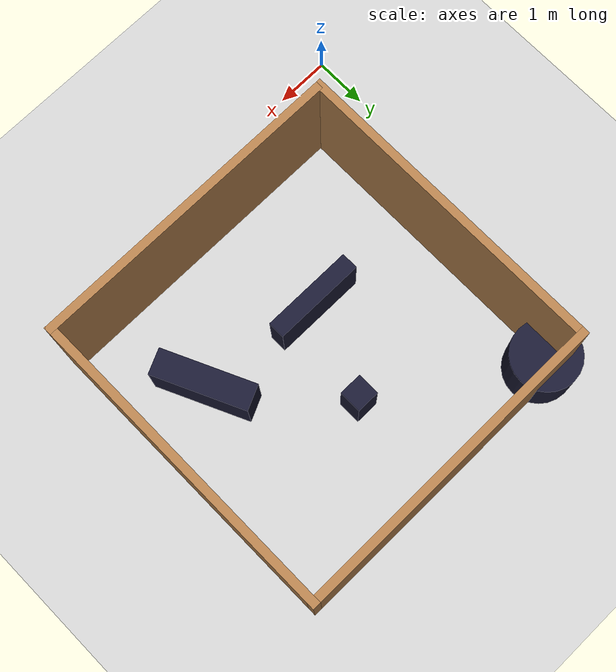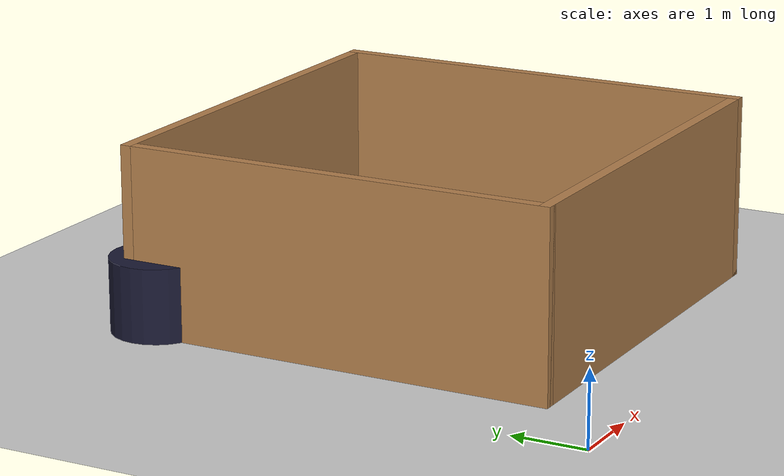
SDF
<sdf version="1.6">
 <world name="default">
  <light name="sun" type="directional">
   <pose>0 0 10 0 -0 0</pose>
   <diffuse>0.8 0.8 0.8 1</diffuse>
   <specular>0.1 0.1 0.1 1</specular>
   <attenuation>
    <range>1000</range>
    <constant>0.9</constant>
    <linear>0.01</linear>
    <quadratic>0.001</quadratic>
   </attenuation>
   <direction>-0.5 0.5 -1</direction>
  </light>
  <model name="ground_plane">
   <static>1</static>
   <link name="link">
    <collision name="collision">
     <geometry><plane><normal>0 0 1</normal><size>100 100</size></plane></geometry>
     <surface><friction><ode><mu>100</mu><mu2>50</mu2></ode></friction></surface>
    </collision>
    <visual name="visual">
     <cast_shadows>0</cast_shadows>
     <geometry><plane><normal>0 0 1</normal><size>100 100</size></plane></geometry>
     <material>
      <script><uri>file://media/materials/scripts/gazebo.material</uri><name>Gazebo/Grey</name></script>
     </material>
    </visual>
   </link>
  </model>
  <gravity>0 0 -9.8</gravity>
  <magnetic_field>6e-06 2.3e-05 -4.2e-05</magnetic_field>
  <atmosphere type="adiabatic"/>
  <physics name="default_physics" default="0" type="ode">
   <max_step_size>0.001</max_step_size>
   <real_time_factor>1</real_time_factor>
   <real_time_update_rate>1000</real_time_update_rate>
  </physics>
  <scene><ambient>0.4 0.4 0.4 1</ambient><background>0.7 0.7 0.7 1</background><shadows>1</shadows></scene>
  <spherical_coordinates>
   <surface_model>EARTH_WGS84</surface_model>
   <latitude_deg>0</latitude_deg>
   <longitude_deg>0</longitude_deg>
   <elevation>0</elevation>
   <heading_deg>0</heading_deg>
  </spherical_coordinates>
  <model name="testBox">
   <pose>4 4 0 0 -0 0</pose>
   <link name="Wall_0">
    <collision name="Wall_0_Collision">
     <geometry><box><size>6 0.15 2.5</size></box></geometry>
     <pose>0 0 1.25 0 -0 0</pose>
    </collision>
    <visual name="Wall_0_Visual">
     <pose>0 0 1.25 0 -0 0</pose>
     <geometry><box><size>6 0.15 2.5</size></box></geometry>
     <material>
      <script><uri>file://media/materials/scripts/gazebo.material</uri><name>Gazebo/Wood</name></script>
      <ambient>1 1 1 1</ambient>
     </material>
    </visual>
    <pose>0 -2.925 0 0 -0 0</pose>
   </link>
   <link name="Wall_4">
    <collision name="Wall_4_Collision">
     <geometry><box><size>6 0.15 2.5</size></box></geometry>
     <pose>0 0 1.25 0 -0 0</pose>
    </collision>
    <visual name="Wall_4_Visual">
     <pose>0 0 1.25 0 -0 0</pose>
     <geometry><box><size>6 0.15 2.5</size></box></geometry>
     <material>
      <script><uri>file://media/materials/scripts/gazebo.material</uri><name>Gazebo/Wood</name></script>
      <ambient>1 1 1 1</ambient>
     </material>
    </visual>
    <pose>2.925 0 0 0 -0 1.5708</pose>
   </link>
   <link name="Wall_5">
    <collision name="Wall_5_Collision">
     <geometry><box><size>6 0.15 2.5</size></box></geometry>
     <pose>0 0 1.25 0 -0 0</pose>
    </collision>
    <visual name="Wall_5_Visual">
     <pose>0 0 1.25 0 -0 0</pose>
     <geometry><box><size>6 0.15 2.5</size></box></geometry>
     <material>
      <script><uri>file://media/materials/scripts/gazebo.material</uri><name>Gazebo/Wood</name></script>
      <ambient>1 1 1 1</ambient>
     </material>
    </visual>
    <pose>0 2.925 0 0 -0 3.14159</pose>
   </link>
   <link name="Wall_6">
    <collision name="Wall_6_Collision">
     <geometry><box><size>6 0.15 2.5</size></box></geometry>
     <pose>0 0 1.25 0 -0 0</pose>
    </collision>
    <visual name="Wall_6_Visual">
     <pose>0 0 1.25 0 -0 0</pose>
     <geometry><box><size>6 0.15 2.5</size></box></geometry>
     <material>
      <script><uri>file://media/materials/scripts/gazebo.material</uri><name>Gazebo/Wood</name></script>
      <ambient>1 1 1 1</ambient>
     </material>
    </visual>
    <pose>-2.925 0 0 0 0 -1.5708</pose>
   </link>
   <static>1</static>
  </model>
  <model name="unit_box_0">
   <static>1</static>
   <pose>3.99294 4.97334 0.500001 0 3e-06 7e-06</pose>
   <link name="link">
    <inertial>
     <mass>1</mass>
     <inertia>
      <ixx>0.166667</ixx>
      <ixy>0</ixy>
      <ixz>0</ixz>
      <iyy>0.166667</iyy>
      <iyz>0</iyz>
      <izz>0.166667</izz>
     </inertia>
    </inertial>
    <collision name="collision"><geometry><box><size>0.438675 0.427319 1</size></box></geometry></collision>
    <visual name="visual">
     <geometry><box><size>0.438675 0.427319 1</size></box></geometry>
     <material>
      <ambient>0.1 0.1 0.1 1</ambient>
      <diffuse>0.1 0.1 0.2 1</diffuse>
      <specular>0 0 0 0</specular>
      <emissive>0 0 0 1</emissive>
     </material>
    </visual>
   </link>
  </model>
  <model name="unit_box_0_clone">
   <static>1</static>
   <pose>3.36574 3.2424 0.5 0 0 -0.000329</pose>
   <link name="link">
    <inertial>
     <mass>1</mass>
     <inertia>
      <ixx>0.166667</ixx>
      <ixy>0</ixy>
      <ixz>0</ixz>
      <iyy>0.166667</iyy>
      <iyz>0</iyz>
      <izz>0.166667</izz>
     </inertia>
    </inertial>
    <collision name="collision"><geometry><box><size>1.73377 0.32059 1</size></box></geometry></collision>
    <visual name="visual">
     <geometry><box><size>1.73377 0.32059 1</size></box></geometry>
     <material>
      <ambient>0.1 0.1 0.1 1</ambient>
      <diffuse>0.1 0.1 0.2 1</diffuse>
      <specular>0 0 0 0</specular>
      <emissive>0 0 0 1</emissive>
     </material>
    </visual>
   </link>
  </model>
  <model name="unit_cylinder_0">
   <pose>1.31982 6.69594 0.499997 5e-06 5e-06 0</pose>
   <link name="link">
    <inertial>
     <mass>1</mass>
     <inertia><ixx>0.145833</ixx><ixy>0</ixy><ixz>0</ixz><iyy>0.145833</iyy><iyz>0</iyz><izz>0.125</izz></inertia>
    </inertial>
    <collision name="collision">
     <geometry><cylinder><radius>0.6337</radius><length>1</length></cylinder></geometry>
    </collision>
    <visual name="visual">
     <geometry><cylinder><radius>0.6337</radius><length>1</length></cylinder></geometry>
     <material>
      <ambient>0.1 0.1 0.1 1</ambient>
      <diffuse>0.1 0.1 0.2 1</diffuse>
      <specular>0 0 0 0</specular>
      <emissive>0 0 0 1</emissive>
     </material>
    </visual>
   </link>
   <static>1</static>
  </model>
  <model name="unit_box_0_clone_clone">
   <static>1</static>
   <pose>5.6711 2.99724 0.499999 -0 2e-06 -1.13371</pose>
   <link name="link">
    <inertial>
     <mass>1</mass>
     <inertia>
      <ixx>0.166667</ixx>
      <ixy>0</ixy>
      <ixz>0</ixz>
      <iyy>0.166667</iyy>
      <iyz>0</iyz>
      <izz>0.166667</izz>
     </inertia>
    </inertial>
    <collision name="collision"><geometry><box><size>1.77553 0.487726 1</size></box></geometry></collision>
    <visual name="visual">
     <geometry><box><size>1.77553 0.487726 1</size></box></geometry>
     <material>
      <ambient>0.1 0.1 0.1 1</ambient>
      <diffuse>0.1 0.1 0.2 1</diffuse>
      <specular>0 0 0 0</specular>
      <emissive>0 0 0 1</emissive>
     </material>
    </visual>
   </link>
  </model>
 </world>
</sdf>
